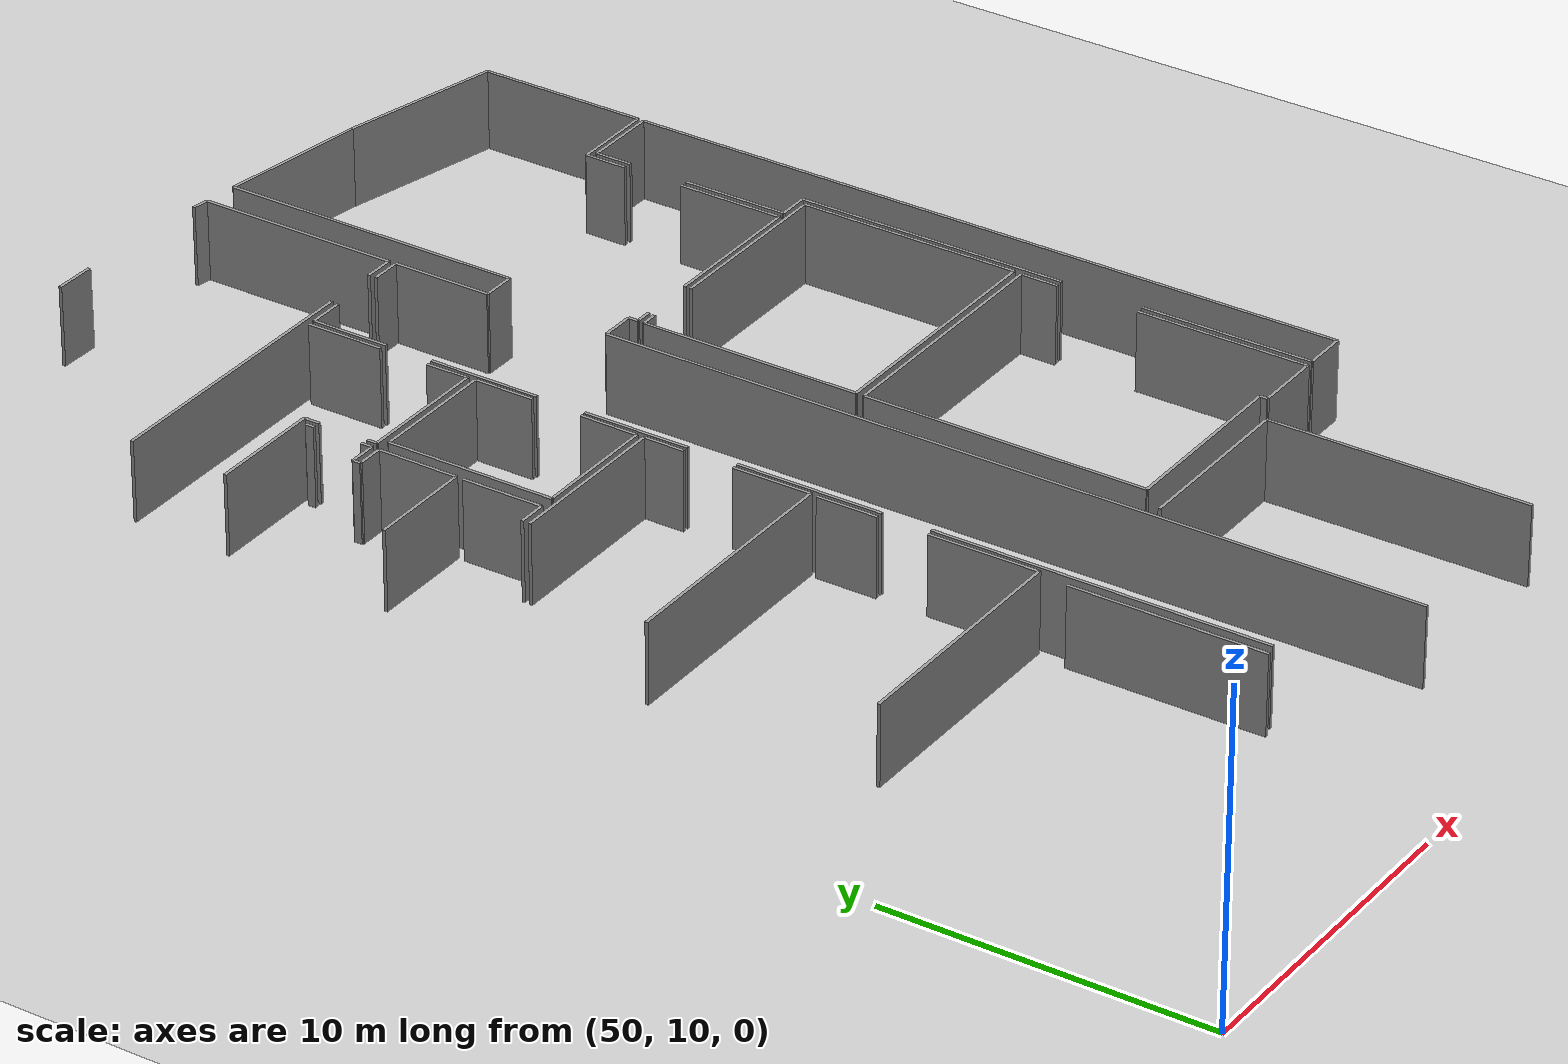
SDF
<sdf version="1.6">
 <world name="default">
  <model name="ground_plane">
   <static>1</static>
   <link name="link">
    <collision name="collision">
     <geometry><plane><normal>0 0 1</normal><size>100 100</size></plane></geometry>
     <surface><friction><ode><mu>100</mu><mu2>50</mu2></ode></friction></surface>
    </collision>
    <visual name="visual">
     <cast_shadows>0</cast_shadows>
     <geometry><plane><normal>0 0 1</normal><size>100 100</size></plane></geometry>
     <material>
      <script><uri>file://media/materials/scripts/gazebo.material</uri><name>Gazebo/Grey</name></script>
     </material>
    </visual>
   </link>
  </model>
  <model name="0510032217_A-40">
   <static>1</static>
   <link name="Wall_191">
    <collision name="Wall_191_Collision">
     <geometry><box><size>6.03047913917 0.1 2.5</size></box></geometry>
     <pose>3.01523956959 0 1.25 0 0 0</pose>
    </collision>
    <visual name="Wall_191_Visual">
     <pose>3.01523956959 0 1.25 0 0 0</pose>
     <geometry><box><size>6.03047913917 0.1 2.5</size></box></geometry>
     <material>
      <script><uri>file://media/materials/scripts/gazebo.material</uri><name>Gazebo/Grey</name></script>
      <ambient>1 1 1 1</ambient>
     </material>
    </visual>
    <pose>138.857032281 -31.1954623896 0 0 0 -1.57079632679</pose>
   </link>
   <link name="Wall_206">
    <collision name="Wall_206_Collision">
     <geometry><box><size>10.3267434778 0.1 2.5</size></box></geometry>
     <pose>5.16337173891 0 1.25 0 0 0</pose>
    </collision>
    <visual name="Wall_206_Visual">
     <pose>5.16337173891 0 1.25 0 0 0</pose>
     <geometry><box><size>10.3267434778 0.1 2.5</size></box></geometry>
     <material>
      <script><uri>file://media/materials/scripts/gazebo.material</uri><name>Gazebo/Grey</name></script>
      <ambient>1 1 1 1</ambient>
     </material>
    </visual>
    <pose>139.238973201 -37.116688661 0 0 0 1.57079632679</pose>
   </link>
   <link name="Wall_207">
    <collision name="Wall_207_Collision">
     <geometry><box><size>4.5528372754 0.1 2.5</size></box></geometry>
     <pose>2.2764186377 0 1.25 0 0 0</pose>
    </collision>
    <visual name="Wall_207_Visual">
     <pose>2.2764186377 0 1.25 0 0 0</pose>
     <geometry><box><size>4.5528372754 0.1 2.5</size></box></geometry>
     <material>
      <script><uri>file://media/materials/scripts/gazebo.material</uri><name>Gazebo/Grey</name></script>
      <ambient>1 1 1 1</ambient>
     </material>
    </visual>
    <pose>139.238973201 -25.2841335905 0 0 0 1.57079632679</pose>
   </link>
   <link name="Wall_208">
    <collision name="Wall_208_Collision">
     <geometry><box><size>3.32834230027 0.1 2.5</size></box></geometry>
     <pose>1.66417115014 0 1.25 0 0 0</pose>
    </collision>
    <visual name="Wall_208_Visual">
     <pose>1.66417115014 0 1.25 0 0 0</pose>
     <geometry><box><size>3.32834230027 0.1 2.5</size></box></geometry>
     <material>
      <script><uri>file://media/materials/scripts/gazebo.material</uri><name>Gazebo/Grey</name></script>
      <ambient>1 1 1 1</ambient>
     </material>
    </visual>
    <pose>139.238973201 -19.1638158563 0 0 0 1.57079632679</pose>
   </link>
   <link name="Wall_209">
    <collision name="Wall_209_Collision">
     <geometry><box><size>3.45612120597 0.1 2.5</size></box></geometry>
     <pose>1.72806060298 0 1.25 0 0 0</pose>
    </collision>
    <visual name="Wall_209_Visual">
     <pose>1.72806060298 0 1.25 0 0 0</pose>
     <geometry><box><size>3.45612120597 0.1 2.5</size></box></geometry>
     <material>
      <script><uri>file://media/materials/scripts/gazebo.material</uri><name>Gazebo/Grey</name></script>
      <ambient>1 1 1 1</ambient>
     </material>
    </visual>
    <pose>139.238973201 -14.2868998071 0 0 0 1.57079632679</pose>
   </link>
   <link name="Wall_210">
    <collision name="Wall_210_Collision">
     <geometry><box><size>2.41092274896 0.1 2.5</size></box></geometry>
     <pose>1.20546137448 0 1.25 0 0 0</pose>
    </collision>
    <visual name="Wall_210_Visual">
     <pose>1.20546137448 0 1.25 0 0 0</pose>
     <geometry><box><size>2.41092274896 0.1 2.5</size></box></geometry>
     <material>
      <script><uri>file://media/materials/scripts/gazebo.material</uri><name>Gazebo/Grey</name></script>
      <ambient>1 1 1 1</ambient>
     </material>
    </visual>
    <pose>139.238973201 -9.31494264542 0 0 0 1.57079632679</pose>
   </link>
   <link name="Wall_211">
    <collision name="Wall_211_Collision">
     <geometry><box><size>1.09125977058 0.1 2.5</size></box></geometry>
     <pose>0.545629885291 0 1.25 0 0 0</pose>
    </collision>
    <visual name="Wall_211_Visual">
     <pose>0.545629885291 0 1.25 0 0 0</pose>
     <geometry><box><size>1.09125977058 0.1 2.5</size></box></geometry>
     <material>
      <script><uri>file://media/materials/scripts/gazebo.material</uri><name>Gazebo/Grey</name></script>
      <ambient>1 1 1 1</ambient>
     </material>
    </visual>
    <pose>139.238973201 -6.90401989646 0 0 0 0.0</pose>
   </link>
   <link name="Wall_212">
    <collision name="Wall_212_Collision">
     <geometry><box><size>0.951680032484 0.1 2.5</size></box></geometry>
     <pose>0.475840016242 0 1.25 0 0 0</pose>
    </collision>
    <visual name="Wall_212_Visual">
     <pose>0.475840016242 0 1.25 0 0 0</pose>
     <geometry><box><size>0.951680032484 0.1 2.5</size></box></geometry>
     <material>
      <script><uri>file://media/materials/scripts/gazebo.material</uri><name>Gazebo/Grey</name></script>
      <ambient>1 1 1 1</ambient>
     </material>
    </visual>
    <pose>142.094013298 -6.90401989646 0 0 0 0.0</pose>
   </link>
   <link name="Wall_213">
    <collision name="Wall_213_Collision">
     <geometry><box><size>3.08242817988 0.1 2.5</size></box></geometry>
     <pose>1.54121408994 0 1.25 0 0 0</pose>
    </collision>
    <visual name="Wall_213_Visual">
     <pose>1.54121408994 0 1.25 0 0 0</pose>
     <geometry><box><size>3.08242817988 0.1 2.5</size></box></geometry>
     <material>
      <script><uri>file://media/materials/scripts/gazebo.material</uri><name>Gazebo/Grey</name></script>
      <ambient>1 1 1 1</ambient>
     </material>
    </visual>
    <pose>143.045693331 -6.90401989646 0 0 0 -1.57079632679</pose>
   </link>
   <link name="Wall_214">
    <collision name="Wall_214_Collision">
     <geometry><box><size>1.03923459547 0.1 2.5</size></box></geometry>
     <pose>0.519617297736 0 1.25 0 0 0</pose>
    </collision>
    <visual name="Wall_214_Visual">
     <pose>0.519617297736 0 1.25 0 0 0</pose>
     <geometry><box><size>1.03923459547 0.1 2.5</size></box></geometry>
     <material>
      <script><uri>file://media/materials/scripts/gazebo.material</uri><name>Gazebo/Grey</name></script>
      <ambient>1 1 1 1</ambient>
     </material>
    </visual>
    <pose>143.045693331 -9.98644807634 0 0 0 0.0</pose>
   </link>
   <link name="Wall_215">
    <collision name="Wall_215_Collision">
     <geometry><box><size>9.41075779109 0.1 2.5</size></box></geometry>
     <pose>4.70537889554 0 1.25 0 0 0</pose>
    </collision>
    <visual name="Wall_215_Visual">
     <pose>4.70537889554 0 1.25 0 0 0</pose>
     <geometry><box><size>9.41075779109 0.1 2.5</size></box></geometry>
     <material>
      <script><uri>file://media/materials/scripts/gazebo.material</uri><name>Gazebo/Grey</name></script>
      <ambient>1 1 1 1</ambient>
     </material>
    </visual>
    <pose>144.084927926 -9.98644807634 0 0 0 1.57079632679</pose>
   </link>
   <link name="Wall_216">
    <collision name="Wall_216_Collision">
     <geometry><box><size>4.6547400284 0.1 2.5</size></box></geometry>
     <pose>2.3273700142 0 1.25 0 0 0</pose>
    </collision>
    <visual name="Wall_216_Visual">
     <pose>2.3273700142 0 1.25 0 0 0</pose>
     <geometry><box><size>4.6547400284 0.1 2.5</size></box></geometry>
     <material>
      <script><uri>file://media/materials/scripts/gazebo.material</uri><name>Gazebo/Grey</name></script>
      <ambient>1 1 1 1</ambient>
     </material>
    </visual>
    <pose>144.084927926 -0.57569028525 0 0 0 -0.160773722414</pose>
   </link>
   <link name="Wall_217">
    <collision name="Wall_217_Collision">
     <geometry><box><size>5.09343958391 0.1 2.5</size></box></geometry>
     <pose>2.54671979195 0 1.25 0 0 0</pose>
    </collision>
    <visual name="Wall_217_Visual">
     <pose>2.54671979195 0 1.25 0 0 0</pose>
     <geometry><box><size>5.09343958391 0.1 2.5</size></box></geometry>
     <material>
      <script><uri>file://media/materials/scripts/gazebo.material</uri><name>Gazebo/Grey</name></script>
      <ambient>1 1 1 1</ambient>
     </material>
    </visual>
    <pose>148.679639123 -1.32083037255 0 0 0 -0.238936440586</pose>
   </link>
   <link name="Wall_218">
    <collision name="Wall_218_Collision">
     <geometry><box><size>5.22460917673 0.1 2.5</size></box></geometry>
     <pose>2.61230458837 0 1.25 0 0 0</pose>
    </collision>
    <visual name="Wall_218_Visual">
     <pose>2.61230458837 0 1.25 0 0 0</pose>
     <geometry><box><size>5.22460917673 0.1 2.5</size></box></geometry>
     <material>
      <script><uri>file://media/materials/scripts/gazebo.material</uri><name>Gazebo/Grey</name></script>
      <ambient>1 1 1 1</ambient>
     </material>
    </visual>
    <pose>153.628375292 -2.52629174703 0 0 0 -1.57079632679</pose>
   </link>
   <link name="Wall_219">
    <collision name="Wall_219_Collision">
     <geometry><box><size>2.56446046087 0.1 2.5</size></box></geometry>
     <pose>1.28223023043 0 1.25 0 0 0</pose>
    </collision>
    <visual name="Wall_219_Visual">
     <pose>1.28223023043 0 1.25 0 0 0</pose>
     <geometry><box><size>2.56446046087 0.1 2.5</size></box></geometry>
     <material>
      <script><uri>file://media/materials/scripts/gazebo.material</uri><name>Gazebo/Grey</name></script>
      <ambient>1 1 1 1</ambient>
     </material>
    </visual>
    <pose>153.628375292 -7.75090092376 0 0 0 3.14159265359</pose>
   </link>
   <link name="Wall_220">
    <collision name="Wall_220_Collision">
     <geometry><box><size>1.31254441173 0.1 2.5</size></box></geometry>
     <pose>0.656272205867 0 1.25 0 0 0</pose>
    </collision>
    <visual name="Wall_220_Visual">
     <pose>0.656272205867 0 1.25 0 0 0</pose>
     <geometry><box><size>1.31254441173 0.1 2.5</size></box></geometry>
     <material>
      <script><uri>file://media/materials/scripts/gazebo.material</uri><name>Gazebo/Grey</name></script>
      <ambient>1 1 1 1</ambient>
     </material>
    </visual>
    <pose>151.063914831 -7.75090092376 0 0 0 -1.57079632679</pose>
   </link>
   <link name="Wall_221">
    <collision name="Wall_221_Collision">
     <geometry><box><size>3.28735661354 0.1 2.5</size></box></geometry>
     <pose>1.64367830677 0 1.25 0 0 0</pose>
    </collision>
    <visual name="Wall_221_Visual">
     <pose>1.64367830677 0 1.25 0 0 0</pose>
     <geometry><box><size>3.28735661354 0.1 2.5</size></box></geometry>
     <material>
      <script><uri>file://media/materials/scripts/gazebo.material</uri><name>Gazebo/Grey</name></script>
      <ambient>1 1 1 1</ambient>
     </material>
    </visual>
    <pose>151.063914831 -10.9629986803 0 0 0 -1.57079632679</pose>
   </link>
   <link name="Wall_222">
    <collision name="Wall_222_Collision">
     <geometry><box><size>4.71525733428 0.1 2.5</size></box></geometry>
     <pose>2.35762866714 0 1.25 0 0 0</pose>
    </collision>
    <visual name="Wall_222_Visual">
     <pose>2.35762866714 0 1.25 0 0 0</pose>
     <geometry><box><size>4.71525733428 0.1 2.5</size></box></geometry>
     <material>
      <script><uri>file://media/materials/scripts/gazebo.material</uri><name>Gazebo/Grey</name></script>
      <ambient>1 1 1 1</ambient>
     </material>
    </visual>
    <pose>151.063914831 -14.2503552939 0 0 0 3.14159265359</pose>
   </link>
   <link name="Wall_223">
    <collision name="Wall_223_Collision">
     <geometry><box><size>0.515176124251 0.1 2.5</size></box></geometry>
     <pose>0.257588062126 0 1.25 0 0 0</pose>
    </collision>
    <visual name="Wall_223_Visual">
     <pose>0.257588062126 0 1.25 0 0 0</pose>
     <geometry><box><size>0.515176124251 0.1 2.5</size></box></geometry>
     <material>
      <script><uri>file://media/materials/scripts/gazebo.material</uri><name>Gazebo/Grey</name></script>
      <ambient>1 1 1 1</ambient>
     </material>
    </visual>
    <pose>144.611524211 -14.2503552939 0 0 0 3.14159265359</pose>
   </link>
   <link name="Wall_224">
    <collision name="Wall_224_Collision">
     <geometry><box><size>0.306187189118 0.1 2.5</size></box></geometry>
     <pose>0.153093594559 0 1.25 0 0 0</pose>
    </collision>
    <visual name="Wall_224_Visual">
     <pose>0.153093594559 0 1.25 0 0 0</pose>
     <geometry><box><size>0.306187189118 0.1 2.5</size></box></geometry>
     <material>
      <script><uri>file://media/materials/scripts/gazebo.material</uri><name>Gazebo/Grey</name></script>
      <ambient>1 1 1 1</ambient>
     </material>
    </visual>
    <pose>144.096348086 -14.2503552939 0 0 0 1.57079632679</pose>
   </link>
   <link name="Wall_225">
    <collision name="Wall_225_Collision">
     <geometry><box><size>1.06715054309 0.1 2.5</size></box></geometry>
     <pose>0.533575271546 0 1.25 0 0 0</pose>
    </collision>
    <visual name="Wall_225_Visual">
     <pose>0.533575271546 0 1.25 0 0 0</pose>
     <geometry><box><size>1.06715054309 0.1 2.5</size></box></geometry>
     <material>
      <script><uri>file://media/materials/scripts/gazebo.material</uri><name>Gazebo/Grey</name></script>
      <ambient>1 1 1 1</ambient>
     </material>
    </visual>
    <pose>144.096348086 -13.9441681048 0 0 0 3.14159265359</pose>
   </link>
   <link name="Wall_226">
    <collision name="Wall_226_Collision">
     <geometry><box><size>25.4946542237 0.1 2.5</size></box></geometry>
     <pose>12.7473271118 0 1.25 0 0 0</pose>
    </collision>
    <visual name="Wall_226_Visual">
     <pose>12.7473271118 0 1.25 0 0 0</pose>
     <geometry><box><size>25.4946542237 0.1 2.5</size></box></geometry>
     <material>
      <script><uri>file://media/materials/scripts/gazebo.material</uri><name>Gazebo/Grey</name></script>
      <ambient>1 1 1 1</ambient>
     </material>
    </visual>
    <pose>143.029197543 -13.9441681048 0 0 0 -1.56915386717</pose>
   </link>
   <link name="Wall_230">
    <collision name="Wall_230_Collision">
     <geometry><box><size>5.50705512131 0.1 2.5</size></box></geometry>
     <pose>2.75352756065 0 1.25 0 0 0</pose>
    </collision>
    <visual name="Wall_230_Visual">
     <pose>2.75352756065 0 1.25 0 0 0</pose>
     <geometry><box><size>5.50705512131 0.1 2.5</size></box></geometry>
     <material>
      <script><uri>file://media/materials/scripts/gazebo.material</uri><name>Gazebo/Grey</name></script>
      <ambient>1 1 1 1</ambient>
     </material>
    </visual>
    <pose>143.432709877 -31.2005380164 0 0 0 0.0</pose>
   </link>
   <link name="Wall_231">
    <collision name="Wall_231_Collision">
     <geometry><box><size>8.05961343058 0.1 2.5</size></box></geometry>
     <pose>4.02980671529 0 1.25 0 0 0</pose>
    </collision>
    <visual name="Wall_231_Visual">
     <pose>4.02980671529 0 1.25 0 0 0</pose>
     <geometry><box><size>8.05961343058 0.1 2.5</size></box></geometry>
     <material>
      <script><uri>file://media/materials/scripts/gazebo.material</uri><name>Gazebo/Grey</name></script>
      <ambient>1 1 1 1</ambient>
     </material>
    </visual>
    <pose>148.939764998 -31.2005380164 0 0 0 -1.56827728181</pose>
   </link>
   <link name="Wall_252">
    <collision name="Wall_252_Collision">
     <geometry><box><size>7.64516292762 0.1 2.5</size></box></geometry>
     <pose>3.82258146381 0 1.25 0 0 0</pose>
    </collision>
    <visual name="Wall_252_Visual">
     <pose>3.82258146381 0 1.25 0 0 0</pose>
     <geometry><box><size>7.64516292762 0.1 2.5</size></box></geometry>
     <material>
      <script><uri>file://media/materials/scripts/gazebo.material</uri><name>Gazebo/Grey</name></script>
      <ambient>1 1 1 1</ambient>
     </material>
    </visual>
    <pose>139.037217034 -30.2309663994 0 0 0 3.14159265359</pose>
   </link>
   <link name="Wall_255">
    <collision name="Wall_255_Collision">
     <geometry><box><size>1.89397015531 0.1 2.5</size></box></geometry>
     <pose>0.946985077657 0 1.25 0 0 0</pose>
    </collision>
    <visual name="Wall_255_Visual">
     <pose>0.946985077657 0 1.25 0 0 0</pose>
     <geometry><box><size>1.89397015531 0.1 2.5</size></box></geometry>
     <material>
      <script><uri>file://media/materials/scripts/gazebo.material</uri><name>Gazebo/Grey</name></script>
      <ambient>1 1 1 1</ambient>
     </material>
    </visual>
    <pose>139.024527967 -23.3778550401 0 0 0 -1.57079632679</pose>
   </link>
   <link name="Wall_256">
    <collision name="Wall_256_Collision">
     <geometry><box><size>3.37975684223 0.1 2.5</size></box></geometry>
     <pose>1.68987842112 0 1.25 0 0 0</pose>
    </collision>
    <visual name="Wall_256_Visual">
     <pose>1.68987842112 0 1.25 0 0 0</pose>
     <geometry><box><size>3.37975684223 0.1 2.5</size></box></geometry>
     <material>
      <script><uri>file://media/materials/scripts/gazebo.material</uri><name>Gazebo/Grey</name></script>
      <ambient>1 1 1 1</ambient>
     </material>
    </visual>
    <pose>139.024527967 -26.8512333773 0 0 0 -1.56704188602</pose>
   </link>
   <link name="Wall_257">
    <collision name="Wall_257_Collision">
     <geometry><box><size>7.67561668866 0.1 2.5</size></box></geometry>
     <pose>3.83780834433 0 1.25 0 0 0</pose>
    </collision>
    <visual name="Wall_257_Visual">
     <pose>3.83780834433 0 1.25 0 0 0</pose>
     <geometry><box><size>7.67561668866 0.1 2.5</size></box></geometry>
     <material>
      <script><uri>file://media/materials/scripts/gazebo.material</uri><name>Gazebo/Grey</name></script>
      <ambient>1 1 1 1</ambient>
     </material>
    </visual>
    <pose>139.061326261 -23.1653131662 0 0 0 3.14159265359</pose>
   </link>
   <link name="Wall_260">
    <collision name="Wall_260_Collision">
     <geometry><box><size>5.31037458126 0.1 2.5</size></box></geometry>
     <pose>2.65518729063 0 1.25 0 0 0</pose>
    </collision>
    <visual name="Wall_260_Visual">
     <pose>2.65518729063 0 1.25 0 0 0</pose>
     <geometry><box><size>5.31037458126 0.1 2.5</size></box></geometry>
     <material>
      <script><uri>file://media/materials/scripts/gazebo.material</uri><name>Gazebo/Grey</name></script>
      <ambient>1 1 1 1</ambient>
     </material>
    </visual>
    <pose>133.7357248 -17.8846310019 0 0 0 0.0</pose>
   </link>
   <link name="Wall_261">
    <collision name="Wall_261_Collision">
     <geometry><box><size>1.27677393158 0.1 2.5</size></box></geometry>
     <pose>0.63838696579 0 1.25 0 0 0</pose>
    </collision>
    <visual name="Wall_261_Visual">
     <pose>0.63838696579 0 1.25 0 0 0</pose>
     <geometry><box><size>1.27677393158 0.1 2.5</size></box></geometry>
     <material>
      <script><uri>file://media/materials/scripts/gazebo.material</uri><name>Gazebo/Grey</name></script>
      <ambient>1 1 1 1</ambient>
     </material>
    </visual>
    <pose>139.046099381 -17.8846310019 0 0 0 -1.57079632679</pose>
   </link>
   <link name="Wall_262">
    <collision name="Wall_262_Collision">
     <geometry><box><size>2.44573819366 0.1 2.5</size></box></geometry>
     <pose>1.22286909683 0 1.25 0 0 0</pose>
    </collision>
    <visual name="Wall_262_Visual">
     <pose>1.22286909683 0 1.25 0 0 0</pose>
     <geometry><box><size>2.44573819366 0.1 2.5</size></box></geometry>
     <material>
      <script><uri>file://media/materials/scripts/gazebo.material</uri><name>Gazebo/Grey</name></script>
      <ambient>1 1 1 1</ambient>
     </material>
    </visual>
    <pose>139.046099381 -20.7196223734 0 0 0 -1.5645704033</pose>
   </link>
   <link name="Wall_263">
    <collision name="Wall_263_Collision">
     <geometry><box><size>0.889503603695 0.1 2.5</size></box></geometry>
     <pose>0.444751801848 0 1.25 0 0 0</pose>
    </collision>
    <visual name="Wall_263_Visual">
     <pose>0.444751801848 0 1.25 0 0 0</pose>
     <geometry><box><size>0.889503603695 0.1 2.5</size></box></geometry>
     <material>
      <script><uri>file://media/materials/scripts/gazebo.material</uri><name>Gazebo/Grey</name></script>
      <ambient>1 1 1 1</ambient>
     </material>
    </visual>
    <pose>134.635379657 -17.6430311643 0 0 0 3.14159265359</pose>
   </link>
   <link name="Wall_267">
    <collision name="Wall_267_Collision">
     <geometry><box><size>2.5063496729 0.1 2.5</size></box></geometry>
     <pose>1.25317483645 0 1.25 0 0 0</pose>
    </collision>
    <visual name="Wall_267_Visual">
     <pose>1.25317483645 0 1.25 0 0 0</pose>
     <geometry><box><size>2.5063496729 0.1 2.5</size></box></geometry>
     <material>
      <script><uri>file://media/materials/scripts/gazebo.material</uri><name>Gazebo/Grey</name></script>
      <ambient>1 1 1 1</ambient>
     </material>
    </visual>
    <pose>134.63030403 -15.1366866308 0 0 0 -1.56877121818</pose>
   </link>
   <link name="Wall_268">
    <collision name="Wall_268_Collision">
     <geometry><box><size>3.93868642777 0.1 2.5</size></box></geometry>
     <pose>1.96934321389 0 1.25 0 0 0</pose>
    </collision>
    <visual name="Wall_268_Visual">
     <pose>1.96934321389 0 1.25 0 0 0</pose>
     <geometry><box><size>3.93868642777 0.1 2.5</size></box></geometry>
     <material>
      <script><uri>file://media/materials/scripts/gazebo.material</uri><name>Gazebo/Grey</name></script>
      <ambient>1 1 1 1</ambient>
     </material>
    </visual>
    <pose>139.037217034 -17.6521672927 0 0 0 3.14159265359</pose>
   </link>
   <link name="Wall_269">
    <collision name="Wall_269_Collision">
     <geometry><box><size>5.25213176327 0.1 2.5</size></box></geometry>
     <pose>2.62606588164 0 1.25 0 0 0</pose>
    </collision>
    <visual name="Wall_269_Visual">
     <pose>2.62606588164 0 1.25 0 0 0</pose>
     <geometry><box><size>5.25213176327 0.1 2.5</size></box></geometry>
     <material>
      <script><uri>file://media/materials/scripts/gazebo.material</uri><name>Gazebo/Grey</name></script>
      <ambient>1 1 1 1</ambient>
     </material>
    </visual>
    <pose>135.098530606 -17.6521672927 0 0 0 1.57079632679</pose>
   </link>
   <link name="Wall_270">
    <collision name="Wall_270_Collision">
     <geometry><box><size>3.96279565526 0.1 2.5</size></box></geometry>
     <pose>1.98139782763 0 1.25 0 0 0</pose>
    </collision>
    <visual name="Wall_270_Visual">
     <pose>1.98139782763 0 1.25 0 0 0</pose>
     <geometry><box><size>3.96279565526 0.1 2.5</size></box></geometry>
     <material>
      <script><uri>file://media/materials/scripts/gazebo.material</uri><name>Gazebo/Grey</name></script>
      <ambient>1 1 1 1</ambient>
     </material>
    </visual>
    <pose>135.098530606 -12.4000355294 0 0 0 0.0</pose>
   </link>
   <link name="Wall_271">
    <collision name="Wall_271_Collision">
     <geometry><box><size>1.8633895036 0.1 2.5</size></box></geometry>
     <pose>0.931694751802 0 1.25 0 0 0</pose>
    </collision>
    <visual name="Wall_271_Visual">
     <pose>0.931694751802 0 1.25 0 0 0</pose>
     <geometry><box><size>1.8633895036 0.1 2.5</size></box></geometry>
     <material>
      <script><uri>file://media/materials/scripts/gazebo.material</uri><name>Gazebo/Grey</name></script>
      <ambient>1 1 1 1</ambient>
     </material>
    </visual>
    <pose>139.061326261 -12.4000355294 0 0 0 -1.57079632679</pose>
   </link>
   <link name="Wall_272">
    <collision name="Wall_272_Collision">
     <geometry><box><size>1.81304732139 0.1 2.5</size></box></geometry>
     <pose>0.906523660697 0 1.25 0 0 0</pose>
    </collision>
    <visual name="Wall_272_Visual">
     <pose>0.906523660697 0 1.25 0 0 0</pose>
     <geometry><box><size>1.81304732139 0.1 2.5</size></box></geometry>
     <material>
      <script><uri>file://media/materials/scripts/gazebo.material</uri><name>Gazebo/Grey</name></script>
      <ambient>1 1 1 1</ambient>
     </material>
    </visual>
    <pose>139.061326261 -15.8392802761 0 0 0 -1.58409434599</pose>
   </link>
   <link name="Wall_273">
    <collision name="Wall_273_Collision">
     <geometry><box><size>4.15059384834 0.1 2.5</size></box></geometry>
     <pose>2.07529692417 0 1.25 0 0 0</pose>
    </collision>
    <visual name="Wall_273_Visual">
     <pose>2.07529692417 0 1.25 0 0 0</pose>
     <geometry><box><size>4.15059384834 0.1 2.5</size></box></geometry>
     <material>
      <script><uri>file://media/materials/scripts/gazebo.material</uri><name>Gazebo/Grey</name></script>
      <ambient>1 1 1 1</ambient>
     </material>
    </visual>
    <pose>139.039754847 -12.1522180489 0 0 0 3.14159265359</pose>
   </link>
   <link name="Wall_274">
    <collision name="Wall_274_Collision">
     <geometry><box><size>0.312024159984 0.1 2.5</size></box></geometry>
     <pose>0.156012079992 0 1.25 0 0 0</pose>
    </collision>
    <visual name="Wall_274_Visual">
     <pose>0.156012079992 0 1.25 0 0 0</pose>
     <geometry><box><size>0.312024159984 0.1 2.5</size></box></geometry>
     <material>
      <script><uri>file://media/materials/scripts/gazebo.material</uri><name>Gazebo/Grey</name></script>
      <ambient>1 1 1 1</ambient>
     </material>
    </visual>
    <pose>134.889160999 -12.1522180489 0 0 0 1.57079632679</pose>
   </link>
   <link name="Wall_275">
    <collision name="Wall_275_Collision">
     <geometry><box><size>0.500583697087 0.1 2.5</size></box></geometry>
     <pose>0.250291848543 0 1.25 0 0 0</pose>
    </collision>
    <visual name="Wall_275_Visual">
     <pose>0.250291848543 0 1.25 0 0 0</pose>
     <geometry><box><size>0.500583697087 0.1 2.5</size></box></geometry>
     <material>
      <script><uri>file://media/materials/scripts/gazebo.material</uri><name>Gazebo/Grey</name></script>
      <ambient>1 1 1 1</ambient>
     </material>
    </visual>
    <pose>134.889160999 -10.2705562887 0 0 0 1.57079632679</pose>
   </link>
   <link name="Wall_276">
    <collision name="Wall_276_Collision">
     <geometry><box><size>3.53263628058 0.1 2.5</size></box></geometry>
     <pose>1.76631814029 0 1.25 0 0 0</pose>
    </collision>
    <visual name="Wall_276_Visual">
     <pose>1.76631814029 0 1.25 0 0 0</pose>
     <geometry><box><size>3.53263628058 0.1 2.5</size></box></geometry>
     <material>
      <script><uri>file://media/materials/scripts/gazebo.material</uri><name>Gazebo/Grey</name></script>
      <ambient>1 1 1 1</ambient>
     </material>
    </visual>
    <pose>134.889160999 -9.76997259162 0 0 0 3.14159265359</pose>
   </link>
   <link name="Wall_279">
    <collision name="Wall_279_Collision">
     <geometry><box><size>2.38648360573 0.1 2.5</size></box></geometry>
     <pose>1.19324180286 0 1.25 0 0 0</pose>
    </collision>
    <visual name="Wall_279_Visual">
     <pose>1.19324180286 0 1.25 0 0 0</pose>
     <geometry><box><size>2.38648360573 0.1 2.5</size></box></geometry>
     <material>
      <script><uri>file://media/materials/scripts/gazebo.material</uri><name>Gazebo/Grey</name></script>
      <ambient>1 1 1 1</ambient>
     </material>
    </visual>
    <pose>139.024527967 -6.8995279667 0 0 0 -1.57079632679</pose>
   </link>
   <link name="Wall_280">
    <collision name="Wall_280_Collision">
     <geometry><box><size>1.32279599671 0.1 2.5</size></box></geometry>
     <pose>0.661397998354 0 1.25 0 0 0</pose>
    </collision>
    <visual name="Wall_280_Visual">
     <pose>0.661397998354 0 1.25 0 0 0</pose>
     <geometry><box><size>1.32279599671 0.1 2.5</size></box></geometry>
     <material>
      <script><uri>file://media/materials/scripts/gazebo.material</uri><name>Gazebo/Grey</name></script>
      <ambient>1 1 1 1</ambient>
     </material>
    </visual>
    <pose>139.024527967 -10.8295096944 0 0 0 -1.55928493966</pose>
   </link>
   <link name="Wall_281">
    <collision name="Wall_281_Collision">
     <geometry><box><size>3.25220789768 0.1 2.5</size></box></geometry>
     <pose>1.62610394884 0 1.25 0 0 0</pose>
    </collision>
    <visual name="Wall_281_Visual">
     <pose>1.62610394884 0 1.25 0 0 0</pose>
     <geometry><box><size>3.25220789768 0.1 2.5</size></box></geometry>
     <material>
      <script><uri>file://media/materials/scripts/gazebo.material</uri><name>Gazebo/Grey</name></script>
      <ambient>1 1 1 1</ambient>
     </material>
    </visual>
    <pose>134.63411075 -14.9030809055 0 0 0 3.14159265359</pose>
   </link>
   <link name="Wall_288">
    <collision name="Wall_288_Collision">
     <geometry><box><size>0.259745203533 0.1 2.5</size></box></geometry>
     <pose>0.129872601766 0 1.25 0 0 0</pose>
    </collision>
    <visual name="Wall_288_Visual">
     <pose>0.129872601766 0 1.25 0 0 0</pose>
     <geometry><box><size>0.259745203533 0.1 2.5</size></box></geometry>
     <material>
      <script><uri>file://media/materials/scripts/gazebo.material</uri><name>Gazebo/Grey</name></script>
      <ambient>1 1 1 1</ambient>
     </material>
    </visual>
    <pose>134.656951071 -10.0018018475 0 0 0 -1.57079632679</pose>
   </link>
   <link name="Wall_289">
    <collision name="Wall_289_Collision">
     <geometry><box><size>0.353263628058 0.1 2.5</size></box></geometry>
     <pose>0.176631814029 0 1.25 0 0 0</pose>
    </collision>
    <visual name="Wall_289_Visual">
     <pose>0.176631814029 0 1.25 0 0 0</pose>
     <geometry><box><size>0.353263628058 0.1 2.5</size></box></geometry>
     <material>
      <script><uri>file://media/materials/scripts/gazebo.material</uri><name>Gazebo/Grey</name></script>
      <ambient>1 1 1 1</ambient>
     </material>
    </visual>
    <pose>134.656951071 -11.7992082022 0 0 0 -1.57079632679</pose>
   </link>
   <link name="Wall_290">
    <collision name="Wall_290_Collision">
     <geometry><box><size>0.837478428586 0.1 2.5</size></box></geometry>
     <pose>0.418739214293 0 1.25 0 0 0</pose>
    </collision>
    <visual name="Wall_290_Visual">
     <pose>0.418739214293 0 1.25 0 0 0</pose>
     <geometry><box><size>0.837478428586 0.1 2.5</size></box></geometry>
     <material>
      <script><uri>file://media/materials/scripts/gazebo.material</uri><name>Gazebo/Grey</name></script>
      <ambient>1 1 1 1</ambient>
     </material>
    </visual>
    <pose>134.656951071 -12.1524718303 0 0 0 3.14159265359</pose>
   </link>
   <link name="Wall_291">
    <collision name="Wall_291_Collision">
     <geometry><box><size>0.239696477515 0.1 2.5</size></box></geometry>
     <pose>0.119848238757 0 1.25 0 0 0</pose>
    </collision>
    <visual name="Wall_291_Visual">
     <pose>0.119848238757 0 1.25 0 0 0</pose>
     <geometry><box><size>0.239696477515 0.1 2.5</size></box></geometry>
     <material>
      <script><uri>file://media/materials/scripts/gazebo.material</uri><name>Gazebo/Grey</name></script>
      <ambient>1 1 1 1</ambient>
     </material>
    </visual>
    <pose>133.819472642 -12.1524718303 0 0 0 -1.57079632679</pose>
   </link>
   <link name="Wall_292">
    <collision name="Wall_292_Collision">
     <geometry><box><size>0.827327174906 0.1 2.5</size></box></geometry>
     <pose>0.413663587453 0 1.25 0 0 0</pose>
    </collision>
    <visual name="Wall_292_Visual">
     <pose>0.413663587453 0 1.25 0 0 0</pose>
     <geometry><box><size>0.827327174906 0.1 2.5</size></box></geometry>
     <material>
      <script><uri>file://media/materials/scripts/gazebo.material</uri><name>Gazebo/Grey</name></script>
      <ambient>1 1 1 1</ambient>
     </material>
    </visual>
    <pose>133.819472642 -12.3921683078 0 0 0 0.0</pose>
   </link>
   <link name="Wall_293">
    <collision name="Wall_293_Collision">
     <geometry><box><size>2.51094466003 0.1 2.5</size></box></geometry>
     <pose>1.25547233002 0 1.25 0 0 0</pose>
    </collision>
    <visual name="Wall_293_Visual">
     <pose>1.25547233002 0 1.25 0 0 0</pose>
     <geometry><box><size>2.51094466003 0.1 2.5</size></box></geometry>
     <material>
      <script><uri>file://media/materials/scripts/gazebo.material</uri><name>Gazebo/Grey</name></script>
      <ambient>1 1 1 1</ambient>
     </material>
    </visual>
    <pose>134.646799817 -12.3921683078 0 0 0 -1.57584985159</pose>
   </link>
   <link name="Wall_294">
    <collision name="Wall_294_Collision">
     <geometry><box><size>0.932646431834 0.1 2.5</size></box></geometry>
     <pose>0.466323215917 0 1.25 0 0 0</pose>
    </collision>
    <visual name="Wall_294_Visual">
     <pose>0.466323215917 0 1.25 0 0 0</pose>
     <geometry><box><size>0.932646431834 0.1 2.5</size></box></geometry>
     <material>
      <script><uri>file://media/materials/scripts/gazebo.material</uri><name>Gazebo/Grey</name></script>
      <ambient>1 1 1 1</ambient>
     </material>
    </visual>
    <pose>143.03807989 -6.66627753528 0 0 0 3.14159265359</pose>
   </link>
   <link name="Wall_295">
    <collision name="Wall_295_Collision">
     <geometry><box><size>8.9775149731 0.1 2.5</size></box></geometry>
     <pose>4.48875748655 0 1.25 0 0 0</pose>
    </collision>
    <visual name="Wall_295_Visual">
     <pose>4.48875748655 0 1.25 0 0 0</pose>
     <geometry><box><size>8.9775149731 0.1 2.5</size></box></geometry>
     <material>
      <script><uri>file://media/materials/scripts/gazebo.material</uri><name>Gazebo/Grey</name></script>
      <ambient>1 1 1 1</ambient>
     </material>
    </visual>
    <pose>140.361955639 -6.66627753528 0 0 0 3.14159265359</pose>
   </link>
   <link name="Wall_298">
    <collision name="Wall_298_Collision">
     <geometry><box><size>1.27050708444 0.1 2.5</size></box></geometry>
     <pose>0.635253542222 0 1.25 0 0 0</pose>
    </collision>
    <visual name="Wall_298_Visual">
     <pose>0.635253542222 0 1.25 0 0 0</pose>
     <geometry><box><size>1.27050708444 0.1 2.5</size></box></geometry>
     <material>
      <script><uri>file://media/materials/scripts/gazebo.material</uri><name>Gazebo/Grey</name></script>
      <ambient>1 1 1 1</ambient>
     </material>
    </visual>
    <pose>136.913067201 -0.0 0 0 0 -0.0228431787451</pose>
   </link>
   <link name="Wall_299">
    <collision name="Wall_299_Collision">
     <geometry><box><size>0.514975016573 0.1 2.5</size></box></geometry>
     <pose>0.257487508286 0 1.25 0 0 0</pose>
    </collision>
    <visual name="Wall_299_Visual">
     <pose>0.257487508286 0 1.25 0 0 0</pose>
     <geometry><box><size>0.514975016573 0.1 2.5</size></box></geometry>
     <material>
      <script><uri>file://media/materials/scripts/gazebo.material</uri><name>Gazebo/Grey</name></script>
      <ambient>1 1 1 1</ambient>
     </material>
    </visual>
    <pose>142.5292483 -0.340993300173 0 0 0 -0.169871948118</pose>
   </link>
   <link name="Wall_300">
    <collision name="Wall_300_Collision">
     <geometry><box><size>6.23822467478 0.1 2.5</size></box></geometry>
     <pose>3.11911233739 0 1.25 0 0 0</pose>
    </collision>
    <visual name="Wall_300_Visual">
     <pose>3.11911233739 0 1.25 0 0 0</pose>
     <geometry><box><size>6.23822467478 0.1 2.5</size></box></geometry>
     <material>
      <script><uri>file://media/materials/scripts/gazebo.material</uri><name>Gazebo/Grey</name></script>
      <ambient>1 1 1 1</ambient>
     </material>
    </visual>
    <pose>143.036810984 -0.428052989544 0 0 0 -1.57059291849</pose>
   </link>
   <link name="Wall_306">
    <collision name="Wall_306_Collision">
     <geometry><box><size>7.97000304538 0.1 2.5</size></box></geometry>
     <pose>3.98500152269 0 1.25 0 0 0</pose>
    </collision>
    <visual name="Wall_306_Visual">
     <pose>3.98500152269 0 1.25 0 0 0</pose>
     <geometry><box><size>7.97000304538 0.1 2.5</size></box></geometry>
     <material>
      <script><uri>file://media/materials/scripts/gazebo.material</uri><name>Gazebo/Grey</name></script>
      <ambient>1 1 1 1</ambient>
     </material>
    </visual>
    <pose>152.054930971 -21.3224799513 0 0 0 3.14159265359</pose>
   </link>
   <link name="Wall_307">
    <collision name="Wall_307_Collision">
     <geometry><box><size>6.8673231144 0.1 2.5</size></box></geometry>
     <pose>3.4336615572 0 1.25 0 0 0</pose>
    </collision>
    <visual name="Wall_307_Visual">
     <pose>3.4336615572 0 1.25 0 0 0</pose>
     <geometry><box><size>6.8673231144 0.1 2.5</size></box></geometry>
     <material>
      <script><uri>file://media/materials/scripts/gazebo.material</uri><name>Gazebo/Grey</name></script>
      <ambient>1 1 1 1</ambient>
     </material>
    </visual>
    <pose>144.084927926 -21.3224799513 0 0 0 1.57079632679</pose>
   </link>
   <link name="Wall_308">
    <collision name="Wall_308_Collision">
     <geometry><box><size>0.503755963862 0.1 2.5</size></box></geometry>
     <pose>0.251877981931 0 1.25 0 0 0</pose>
    </collision>
    <visual name="Wall_308_Visual">
     <pose>0.251877981931 0 1.25 0 0 0</pose>
     <geometry><box><size>0.503755963862 0.1 2.5</size></box></geometry>
     <material>
      <script><uri>file://media/materials/scripts/gazebo.material</uri><name>Gazebo/Grey</name></script>
      <ambient>1 1 1 1</ambient>
     </material>
    </visual>
    <pose>144.084927926 -14.4551568369 0 0 0 0.0</pose>
   </link>
   <link name="Wall_309">
    <collision name="Wall_309_Collision">
     <geometry><box><size>5.70881128819 0.1 2.5</size></box></geometry>
     <pose>2.8544056441 0 1.25 0 0 0</pose>
    </collision>
    <visual name="Wall_309_Visual">
     <pose>2.8544056441 0 1.25 0 0 0</pose>
     <geometry><box><size>5.70881128819 0.1 2.5</size></box></geometry>
     <material>
      <script><uri>file://media/materials/scripts/gazebo.material</uri><name>Gazebo/Grey</name></script>
      <ambient>1 1 1 1</ambient>
     </material>
    </visual>
    <pose>146.33977515 -14.4551568369 0 0 0 0.0</pose>
   </link>
   <link name="Wall_310">
    <collision name="Wall_310_Collision">
     <geometry><box><size>6.86732604518 0.1 2.5</size></box></geometry>
     <pose>3.43366302259 0 1.25 0 0 0</pose>
    </collision>
    <visual name="Wall_310_Visual">
     <pose>3.43366302259 0 1.25 0 0 0</pose>
     <geometry><box><size>6.86732604518 0.1 2.5</size></box></geometry>
     <material>
      <script><uri>file://media/materials/scripts/gazebo.material</uri><name>Gazebo/Grey</name></script>
      <ambient>1 1 1 1</ambient>
     </material>
    </visual>
    <pose>152.048586438 -14.4551568369 0 0 0 -1.56987245418</pose>
   </link>
   <link name="Wall_311">
    <collision name="Wall_311_Collision">
     <geometry><box><size>2.12288092579 0.1 2.5</size></box></geometry>
     <pose>1.0614404629 0 1.25 0 0 0</pose>
    </collision>
    <visual name="Wall_311_Visual">
     <pose>1.0614404629 0 1.25 0 0 0</pose>
     <geometry><box><size>2.12288092579 0.1 2.5</size></box></geometry>
     <material>
      <script><uri>file://media/materials/scripts/gazebo.material</uri><name>Gazebo/Grey</name></script>
      <ambient>1 1 1 1</ambient>
     </material>
    </visual>
    <pose>152.029552837 -30.6631560248 0 0 0 3.14159265359</pose>
   </link>
   <link name="Wall_312">
    <collision name="Wall_312_Collision">
     <geometry><box><size>0.24286874429 0.1 2.5</size></box></geometry>
     <pose>0.121434372145 0 1.25 0 0 0</pose>
    </collision>
    <visual name="Wall_312_Visual">
     <pose>0.121434372145 0 1.25 0 0 0</pose>
     <geometry><box><size>0.24286874429 0.1 2.5</size></box></geometry>
     <material>
      <script><uri>file://media/materials/scripts/gazebo.material</uri><name>Gazebo/Grey</name></script>
      <ambient>1 1 1 1</ambient>
     </material>
    </visual>
    <pose>149.906671911 -30.6631560248 0 0 0 1.57079632679</pose>
   </link>
   <link name="Wall_313">
    <collision name="Wall_313_Collision">
     <geometry><box><size>5.81793726525 0.1 2.5</size></box></geometry>
     <pose>2.90896863263 0 1.25 0 0 0</pose>
    </collision>
    <visual name="Wall_313_Visual">
     <pose>2.90896863263 0 1.25 0 0 0</pose>
     <geometry><box><size>5.81793726525 0.1 2.5</size></box></geometry>
     <material>
      <script><uri>file://media/materials/scripts/gazebo.material</uri><name>Gazebo/Grey</name></script>
      <ambient>1 1 1 1</ambient>
     </material>
    </visual>
    <pose>149.906671911 -30.4202872805 0 0 0 3.14159265359</pose>
   </link>
   <link name="Wall_314">
    <collision name="Wall_314_Collision">
     <geometry><box><size>8.84263018983 0.1 2.5</size></box></geometry>
     <pose>4.42131509491 0 1.25 0 0 0</pose>
    </collision>
    <visual name="Wall_314_Visual">
     <pose>4.42131509491 0 1.25 0 0 0</pose>
     <geometry><box><size>8.84263018983 0.1 2.5</size></box></geometry>
     <material>
      <script><uri>file://media/materials/scripts/gazebo.material</uri><name>Gazebo/Grey</name></script>
      <ambient>1 1 1 1</ambient>
     </material>
    </visual>
    <pose>144.088734646 -30.4202872805 0 0 0 1.57079632679</pose>
   </link>
   <link name="Wall_315">
    <collision name="Wall_315_Collision">
     <geometry><box><size>7.93066693737 0.1 2.5</size></box></geometry>
     <pose>3.96533346868 0 1.25 0 0 0</pose>
    </collision>
    <visual name="Wall_315_Visual">
     <pose>3.96533346868 0 1.25 0 0 0</pose>
     <geometry><box><size>7.93066693737 0.1 2.5</size></box></geometry>
     <material>
      <script><uri>file://media/materials/scripts/gazebo.material</uri><name>Gazebo/Grey</name></script>
      <ambient>1 1 1 1</ambient>
     </material>
    </visual>
    <pose>144.088734646 -21.5776570907 0 0 0 0.0</pose>
   </link>
   <link name="Wall_316">
    <collision name="Wall_316_Collision">
     <geometry><box><size>1.16955131459 0.1 2.5</size></box></geometry>
     <pose>0.584775657294 0 1.25 0 0 0</pose>
    </collision>
    <visual name="Wall_316_Visual">
     <pose>0.584775657294 0 1.25 0 0 0</pose>
     <geometry><box><size>1.16955131459 0.1 2.5</size></box></geometry>
     <material>
      <script><uri>file://media/materials/scripts/gazebo.material</uri><name>Gazebo/Grey</name></script>
      <ambient>1 1 1 1</ambient>
     </material>
    </visual>
    <pose>152.019401584 -21.5776570907 0 0 0 -1.57079632679</pose>
   </link>
   <link name="Wall_317">
    <collision name="Wall_317_Collision">
     <geometry><box><size>5.34426403141 0.1 2.5</size></box></geometry>
     <pose>2.67213201571 0 1.25 0 0 0</pose>
    </collision>
    <visual name="Wall_317_Visual">
     <pose>2.67213201571 0 1.25 0 0 0</pose>
     <geometry><box><size>5.34426403141 0.1 2.5</size></box></geometry>
     <material>
      <script><uri>file://media/materials/scripts/gazebo.material</uri><name>Gazebo/Grey</name></script>
      <ambient>1 1 1 1</ambient>
     </material>
    </visual>
    <pose>152.019401584 -25.3189016344 0 0 0 -1.56889685856</pose>
   </link>
   <link name="Wall_318">
    <collision name="Wall_318_Collision">
     <geometry><box><size>1.35773017968 0.1 2.5</size></box></geometry>
     <pose>0.678865089839 0 1.25 0 0 0</pose>
    </collision>
    <visual name="Wall_318_Visual">
     <pose>0.678865089839 0 1.25 0 0 0</pose>
     <geometry><box><size>1.35773017968 0.1 2.5</size></box></geometry>
     <material>
      <script><uri>file://media/materials/scripts/gazebo.material</uri><name>Gazebo/Grey</name></script>
      <ambient>1 1 1 1</ambient>
     </material>
    </visual>
    <pose>153.628375292 -30.6579535073 0 0 0 3.14159265359</pose>
   </link>
   <link name="Wall_319">
    <collision name="Wall_319_Collision">
     <geometry><box><size>5.34818800122 0.1 2.5</size></box></geometry>
     <pose>2.67409400061 0 1.25 0 0 0</pose>
    </collision>
    <visual name="Wall_319_Visual">
     <pose>2.67409400061 0 1.25 0 0 0</pose>
     <geometry><box><size>5.34818800122 0.1 2.5</size></box></geometry>
     <material>
      <script><uri>file://media/materials/scripts/gazebo.material</uri><name>Gazebo/Grey</name></script>
      <ambient>1 1 1 1</ambient>
     </material>
    </visual>
    <pose>152.270645112 -30.6579535073 0 0 0 1.57079632679</pose>
   </link>
   <link name="Wall_320">
    <collision name="Wall_320_Collision">
     <geometry><box><size>8.49685311136 0.1 2.5</size></box></geometry>
     <pose>4.24842655568 0 1.25 0 0 0</pose>
    </collision>
    <visual name="Wall_320_Visual">
     <pose>4.24842655568 0 1.25 0 0 0</pose>
     <geometry><box><size>8.49685311136 0.1 2.5</size></box></geometry>
     <material>
      <script><uri>file://media/materials/scripts/gazebo.material</uri><name>Gazebo/Grey</name></script>
      <ambient>1 1 1 1</ambient>
     </material>
    </visual>
    <pose>152.270645112 -22.7304588367 0 0 0 1.57079632679</pose>
   </link>
   <link name="Wall_321">
    <collision name="Wall_321_Collision">
     <geometry><box><size>0.964369099584 0.1 2.5</size></box></geometry>
     <pose>0.482184549792 0 1.25 0 0 0</pose>
    </collision>
    <visual name="Wall_321_Visual">
     <pose>0.482184549792 0 1.25 0 0 0</pose>
     <geometry><box><size>0.964369099584 0.1 2.5</size></box></geometry>
     <material>
      <script><uri>file://media/materials/scripts/gazebo.material</uri><name>Gazebo/Grey</name></script>
      <ambient>1 1 1 1</ambient>
     </material>
    </visual>
    <pose>152.270645112 -14.2336057253 0 0 0 3.14159265359</pose>
   </link>
   <link name="Wall_322">
    <collision name="Wall_322_Collision">
     <geometry><box><size>3.25880621257 0.1 2.5</size></box></geometry>
     <pose>1.62940310628 0 1.25 0 0 0</pose>
    </collision>
    <visual name="Wall_322_Visual">
     <pose>1.62940310628 0 1.25 0 0 0</pose>
     <geometry><box><size>3.25880621257 0.1 2.5</size></box></geometry>
     <material>
      <script><uri>file://media/materials/scripts/gazebo.material</uri><name>Gazebo/Grey</name></script>
      <ambient>1 1 1 1</ambient>
     </material>
    </visual>
    <pose>151.306276013 -14.2336057253 0 0 0 1.57079632679</pose>
   </link>
   <link name="Wall_323">
    <collision name="Wall_323_Collision">
     <geometry><box><size>1.14171150137 0.1 2.5</size></box></geometry>
     <pose>0.570855750685 0 1.25 0 0 0</pose>
    </collision>
    <visual name="Wall_323_Visual">
     <pose>0.570855750685 0 1.25 0 0 0</pose>
     <geometry><box><size>1.14171150137 0.1 2.5</size></box></geometry>
     <material>
      <script><uri>file://media/materials/scripts/gazebo.material</uri><name>Gazebo/Grey</name></script>
      <ambient>1 1 1 1</ambient>
     </material>
    </visual>
    <pose>151.306276013 -9.08450918688 0 0 0 1.57079632679</pose>
   </link>
   <link name="Wall_324">
    <collision name="Wall_324_Collision">
     <geometry><box><size>2.30687239874 0.1 2.5</size></box></geometry>
     <pose>1.15343619937 0 1.25 0 0 0</pose>
    </collision>
    <visual name="Wall_324_Visual">
     <pose>1.15343619937 0 1.25 0 0 0</pose>
     <geometry><box><size>2.30687239874 0.1 2.5</size></box></geometry>
     <material>
      <script><uri>file://media/materials/scripts/gazebo.material</uri><name>Gazebo/Grey</name></script>
      <ambient>1 1 1 1</ambient>
     </material>
    </visual>
    <pose>151.306276013 -7.94279768551 0 0 0 0.0</pose>
   </link>
   <link name="Wall_325">
    <collision name="Wall_325_Collision">
     <geometry><box><size>22.7151609253 0.1 2.5</size></box></geometry>
     <pose>11.3575804627 0 1.25 0 0 0</pose>
    </collision>
    <visual name="Wall_325_Visual">
     <pose>11.3575804627 0 1.25 0 0 0</pose>
     <geometry><box><size>22.7151609253 0.1 2.5</size></box></geometry>
     <material>
      <script><uri>file://media/materials/scripts/gazebo.material</uri><name>Gazebo/Grey</name></script>
      <ambient>1 1 1 1</ambient>
     </material>
    </visual>
    <pose>153.613148411 -7.94279768551 0 0 0 -1.57012598676</pose>
   </link>
   <pose>-76.8 53.1213480865 0 0 0 0</pose>
  </model>
 </world>
</sdf>
